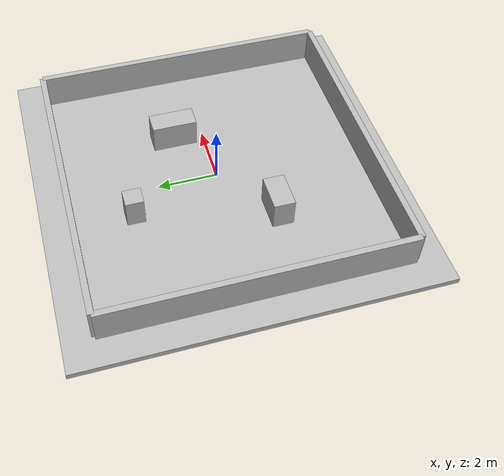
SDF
<?xml version='1.0' encoding='utf-8'?>
<sdf version="1.6">
  <world name="training">
    <physics name="default" type="ode">
      <max_step_size>0.001</max_step_size>
      <real_time_update_rate>1000</real_time_update_rate>
    </physics>
    <light name="sun" type="directional">
      <pose>0 0 10 0 0 0</pose>
      <diffuse>0.8 0.8 0.8 1</diffuse>
      <direction>-0.5 0.2 -1</direction>
    </light>
    <model name="floor">
      <static>true</static>
      <pose>0 0 -0.1 0 0 0</pose>
      <link name="link">
        <collision name="collision">
          <geometry>
            <box>
              <size>12 12 0.2</size>
            </box>
          </geometry>
        </collision>
        <visual name="visual">
          <geometry>
            <box>
              <size>12 12 0.2</size>
            </box>
          </geometry>
        </visual>
      </link>
    </model>
    <model name="north">
      <static>true</static>
      <pose>0 5 0.6 0 0 0</pose>
      <link name="link">
        <collision name="collision">
          <geometry>
            <box>
              <size>10 0.2 1.2</size>
            </box>
          </geometry>
        </collision>
        <visual name="visual">
          <geometry>
            <box>
              <size>10 0.2 1.2</size>
            </box>
          </geometry>
        </visual>
      </link>
    </model>
    <model name="south">
      <static>true</static>
      <pose>0 -5 0.6 0 0 0</pose>
      <link name="link">
        <collision name="collision">
          <geometry>
            <box>
              <size>10 0.2 1.2</size>
            </box>
          </geometry>
        </collision>
        <visual name="visual">
          <geometry>
            <box>
              <size>10 0.2 1.2</size>
            </box>
          </geometry>
        </visual>
      </link>
    </model>
    <model name="east">
      <static>true</static>
      <pose>5 0 0.6 0 0 0</pose>
      <link name="link">
        <collision name="collision">
          <geometry>
            <box>
              <size>0.2 10 1.2</size>
            </box>
          </geometry>
        </collision>
        <visual name="visual">
          <geometry>
            <box>
              <size>0.2 10 1.2</size>
            </box>
          </geometry>
        </visual>
      </link>
    </model>
    <model name="west">
      <static>true</static>
      <pose>-5 0 0.6 0 0 0</pose>
      <link name="link">
        <collision name="collision">
          <geometry>
            <box>
              <size>0.2 10 1.2</size>
            </box>
          </geometry>
        </collision>
        <visual name="visual">
          <geometry>
            <box>
              <size>0.2 10 1.2</size>
            </box>
          </geometry>
        </visual>
      </link>
    </model>
    <model name="obstacle_a">
      <static>true</static>
      <pose>2 1 0.5 0 0 0</pose>
      <link name="link">
        <collision name="collision">
          <geometry>
            <box>
              <size>0.7 1.5 1</size>
            </box>
          </geometry>
        </collision>
        <visual name="visual">
          <geometry>
            <box>
              <size>0.7 1.5 1</size>
            </box>
          </geometry>
        </visual>
      </link>
    </model>
    <model name="obstacle_b">
      <static>true</static>
      <pose>-2 -1.5 0.5 0 0 0</pose>
      <link name="link">
        <collision name="collision">
          <geometry>
            <box>
              <size>1.2 0.7 1</size>
            </box>
          </geometry>
        </collision>
        <visual name="visual">
          <geometry>
            <box>
              <size>1.2 0.7 1</size>
            </box>
          </geometry>
        </visual>
      </link>
    </model>
    <model name="obstacle_c">
      <static>true</static>
      <pose>-1 3 0.5 0 0 0</pose>
      <link name="link">
        <collision name="collision">
          <geometry>
            <box>
              <size>0.6 0.6 1</size>
            </box>
          </geometry>
        </collision>
        <visual name="visual">
          <geometry>
            <box>
              <size>0.6 0.6 1</size>
            </box>
          </geometry>
        </visual>
      </link>
    </model>
  </world>
</sdf>
